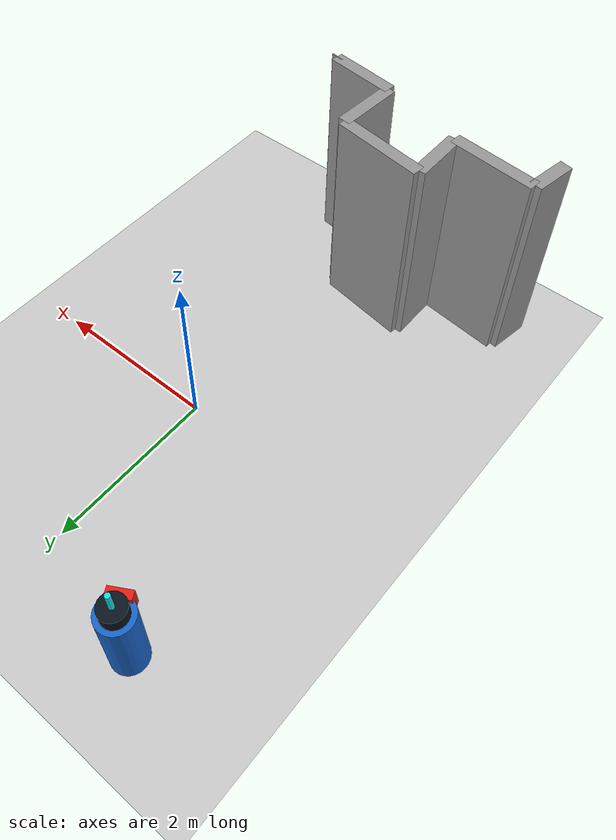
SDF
<sdf version="1.7">
 <world name="default">
  <plugin name="socnav_plugin" filename="libSocNavPlugin.so">
   <robot_name>robot</robot_name>
   <trajectory_file>/home/hunav_gz_classic_ws/SocNav3_trajectories/src3/000000958.json</trajectory_file>
   <human_slots>3</human_slots>
  </plugin>
  <light name="sun" type="directional">
   <pose>0 0 10 0 -0 0</pose>
   <diffuse>0.8 0.8 0.8 1</diffuse>
   <specular>0.2 0.2 0.2 1</specular>
   <attenuation>
    <range>1000</range>
    <constant>0.9</constant>
    <linear>0.01</linear>
    <quadratic>0.001</quadratic>
   </attenuation>
   <direction>-0.5 0.1 -0.9</direction>
   <spot><inner_angle>0</inner_angle><outer_angle>0</outer_angle><falloff>0</falloff></spot>
  </light>
  <model name="ground_plane">
   <static>1</static>
   <link name="link">
    <collision name="collision">
     <geometry><plane><normal>0 0 1</normal><size>100 100</size></plane></geometry>
     <surface><friction><ode><mu>100</mu><mu2>50</mu2></ode></friction></surface>
    </collision>
    <visual name="visual">
     <cast_shadows>0</cast_shadows>
     <geometry><plane><normal>0 0 1</normal><size>100 100</size></plane></geometry>
     <material>
      <script><uri>file://media/materials/scripts/kitchen.material</uri><name>Kitchen/CounterTop_H</name></script>
     </material>
    </visual>
   </link>
  </model>
  <gravity>0 0 -9.8</gravity>
  <magnetic_field>6e-06 2.3e-05 -4.2e-05</magnetic_field>
  <atmosphere type="adiabatic"/>
  <physics type="ode">
   <max_step_size>0.001</max_step_size>
   <real_time_factor>1</real_time_factor>
   <real_time_update_rate>1000</real_time_update_rate>
  </physics>
  <scene><ambient>0.4 0.4 0.4 1</ambient><background>0.7 0.7 0.7 1</background><shadows>1</shadows></scene>
  <audio><device>default</device></audio>
  <spherical_coordinates>
   <surface_model>EARTH_WGS84</surface_model>
   <latitude_deg>0</latitude_deg>
   <longitude_deg>0</longitude_deg>
   <elevation>0</elevation>
   <heading_deg>0</heading_deg>
  </spherical_coordinates>
  <model name="robot">
   <pose>-1.4336418598084228 2.424756135016506 0.5 0 0 -1.0562808810535673</pose>
   <link name="link">
    <collision name="collision">
     <geometry><cylinder><radius>0.2</radius><length>1.0</length></cylinder></geometry>
    </collision>
    <visual name="visual">
     <geometry><cylinder><radius>0.2</radius><length>1.0</length></cylinder></geometry>
     <material><ambient>0.1 0.4 0.8 1</ambient><diffuse>0.1 0.4 0.8 1</diffuse></material>
    </visual>
    <visual name="robot_top">
     <pose>0 0 0.58 0 0 0</pose>
     <geometry><cylinder><radius>0.144</radius><length>0.16</length></cylinder></geometry>
     <material><ambient>0.04 0.08 0.12 1</ambient><diffuse>0.04 0.08 0.12 1</diffuse></material>
    </visual>
    <visual name="robot_front">
     <pose>0.168 0 0.44 0 0 0</pose>
     <geometry><box><size>0.096 0.256 0.24</size></box></geometry>
     <material><ambient>0.9 0.12 0.08 1</ambient><diffuse>0.9 0.12 0.08 1</diffuse></material>
    </visual>
    <visual name="robot_sensor">
     <pose>0 0 0.78 0 0 0</pose>
     <geometry><cylinder><radius>0.028000000000000004</radius><length>0.24</length></cylinder></geometry>
     <material><ambient>0.1 0.9 0.9 1</ambient><diffuse>0.1 0.9 0.9 1</diffuse></material>
    </visual>
   </link>
  </model>
  <model name="simple_world_test">
   <link name="Wall_0">
    <collision name="Wall_0_Collision">
     <geometry><box><size>0.47321057346617135 0.15 2.5</size></box></geometry>
     <pose>0 0 1.25 0 -0 0</pose>
    </collision>
    <visual name="Wall_0_Visual">
     <pose>0 0 1.25 0 -0 0</pose>
     <geometry><box><size>0.47321057346617135 0.15 2.5</size></box></geometry>
     <material>
      <script><uri>file://media/materials/scripts/gazebo.material</uri><name>Gazebo/Grey</name></script>
      <ambient>1 1 1 1</ambient>
     </material>
     <meta><layer>0</layer></meta>
    </visual>
    <pose>-2.108816551008566 -3.1582931027693926 0 0 -0 1.3909428270024187</pose>
   </link>
   <link name="Wall_1">
    <collision name="Wall_1_Collision">
     <geometry><box><size>1.004987562112089 0.15 2.5</size></box></geometry>
     <pose>0 0 1.25 0 -0 0</pose>
    </collision>
    <visual name="Wall_1_Visual">
     <pose>0 0 1.25 0 -0 0</pose>
     <geometry><box><size>1.004987562112089 0.15 2.5</size></box></geometry>
     <material>
      <script><uri>file://media/materials/scripts/gazebo.material</uri><name>Gazebo/Grey</name></script>
      <ambient>1 1 1 1</ambient>
     </material>
     <meta><layer>0</layer></meta>
    </visual>
    <pose>-1.5664913106108855 -2.9755042805821486 0 0 -0 -0.09966865249116212</pose>
   </link>
   <link name="Wall_2">
    <collision name="Wall_2_Collision">
     <geometry><box><size>0.6499999999999999 0.15 2.5</size></box></geometry>
     <pose>0 0 1.25 0 -0 0</pose>
    </collision>
    <visual name="Wall_2_Visual">
     <pose>0 0 1.25 0 -0 0</pose>
     <geometry><box><size>0.6499999999999999 0.15 2.5</size></box></geometry>
     <material>
      <script><uri>file://media/materials/scripts/gazebo.material</uri><name>Gazebo/Grey</name></script>
      <ambient>1 1 1 1</ambient>
     </material>
     <meta><layer>0</layer></meta>
    </visual>
    <pose>-1.0664913106108855 -2.700504280582149 0 0 -0 1.5707963267948966</pose>
   </link>
   <link name="Wall_3">
    <collision name="Wall_3_Collision">
     <geometry><box><size>1.0606601717798214 0.15 2.5</size></box></geometry>
     <pose>0 0 1.25 0 -0 0</pose>
    </collision>
    <visual name="Wall_3_Visual">
     <pose>0 0 1.25 0 -0 0</pose>
     <geometry><box><size>1.0606601717798214 0.15 2.5</size></box></geometry>
     <material>
      <script><uri>file://media/materials/scripts/gazebo.material</uri><name>Gazebo/Grey</name></script>
      <ambient>1 1 1 1</ambient>
     </material>
     <meta><layer>0</layer></meta>
    </visual>
    <pose>-0.5414913106108854 -2.450504280582149 0 0 -0 -0.1418970546041638</pose>
   </link>
   <link name="Wall_4">
    <collision name="Wall_4_Collision">
     <geometry><box><size>0.7516648189186454 0.15 2.5</size></box></geometry>
     <pose>0 0 1.25 0 -0 0</pose>
    </collision>
    <visual name="Wall_4_Visual">
     <pose>0 0 1.25 0 -0 0</pose>
     <geometry><box><size>0.7516648189186454 0.15 2.5</size></box></geometry>
     <material>
      <script><uri>file://media/materials/scripts/gazebo.material</uri><name>Gazebo/Grey</name></script>
      <ambient>1 1 1 1</ambient>
     </material>
     <meta><layer>0</layer></meta>
    </visual>
    <pose>-0.04149131061088529 -2.900504280582149 0 0 -0 -1.6373644905707205</pose>
   </link>
   <link name="Wall_5">
    <collision name="Wall_5_Collision">
     <geometry><box><size>0.8062257748298549 0.15 2.5</size></box></geometry>
     <pose>0 0 1.25 0 -0 0</pose>
    </collision>
    <visual name="Wall_5_Visual">
     <pose>0 0 1.25 0 -0 0</pose>
     <geometry><box><size>0.8062257748298549 0.15 2.5</size></box></geometry>
     <material>
      <script><uri>file://media/materials/scripts/gazebo.material</uri><name>Gazebo/Grey</name></script>
      <ambient>1 1 1 1</ambient>
     </material>
     <meta><layer>0</layer></meta>
    </visual>
    <pose>0.33350868938911465 -3.325504280582149 0 0 -0 -0.12435499454676155</pose>
   </link>
   <link name="Wall_6">
    <collision name="Wall_6_Collision">
     <geometry><box><size>0.015792518585240566 0.15 2.5</size></box></geometry>
     <pose>0 0 1.25 0 -0 0</pose>
    </collision>
    <visual name="Wall_6_Visual">
     <pose>0 0 1.25 0 -0 0</pose>
     <geometry><box><size>0.015792518585240566 0.15 2.5</size></box></geometry>
     <material>
      <script><uri>file://media/materials/scripts/gazebo.material</uri><name>Gazebo/Grey</name></script>
      <ambient>1 1 1 1</ambient>
     </material>
     <meta><layer>0</layer></meta>
    </visual>
    <pose>0.7322105523579073 -3.3832931027693927 0 0 -0 -1.7359450042095235</pose>
   </link>
   <static>1</static>
  </model>
 </world>
</sdf>
